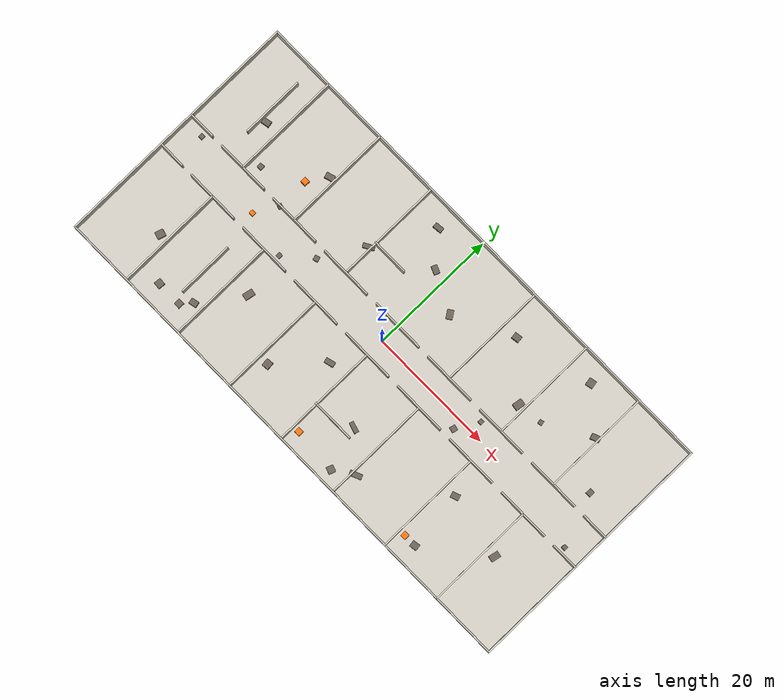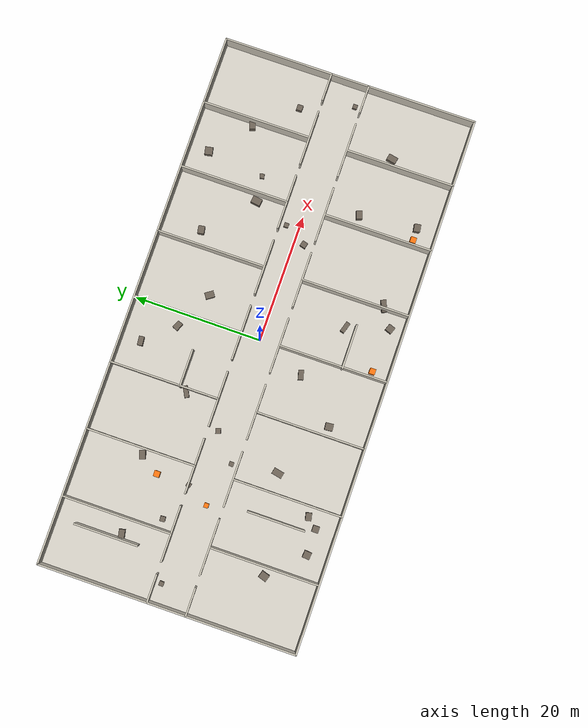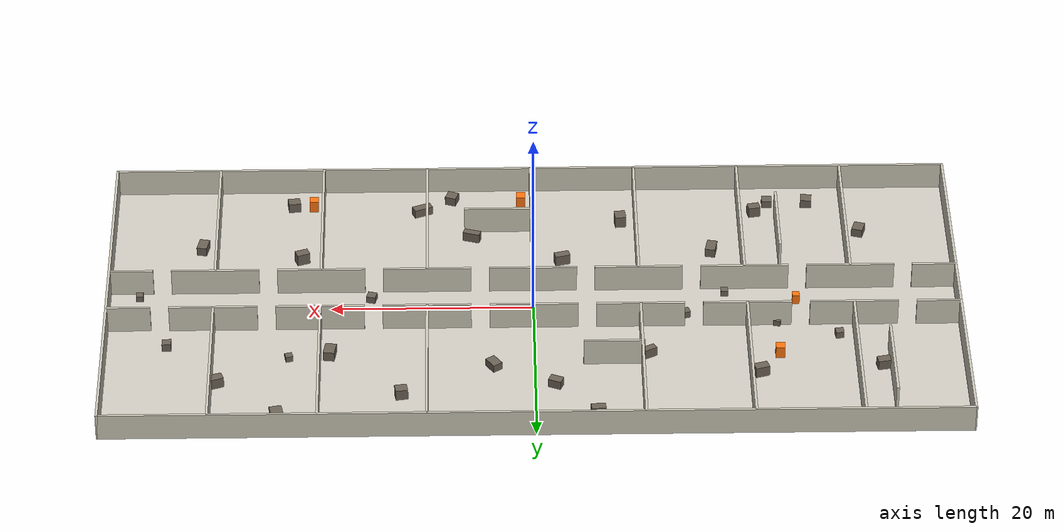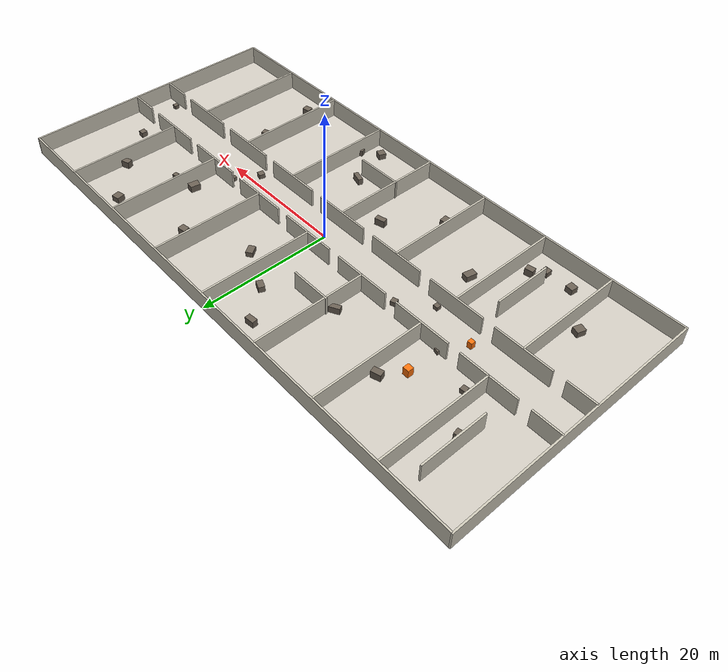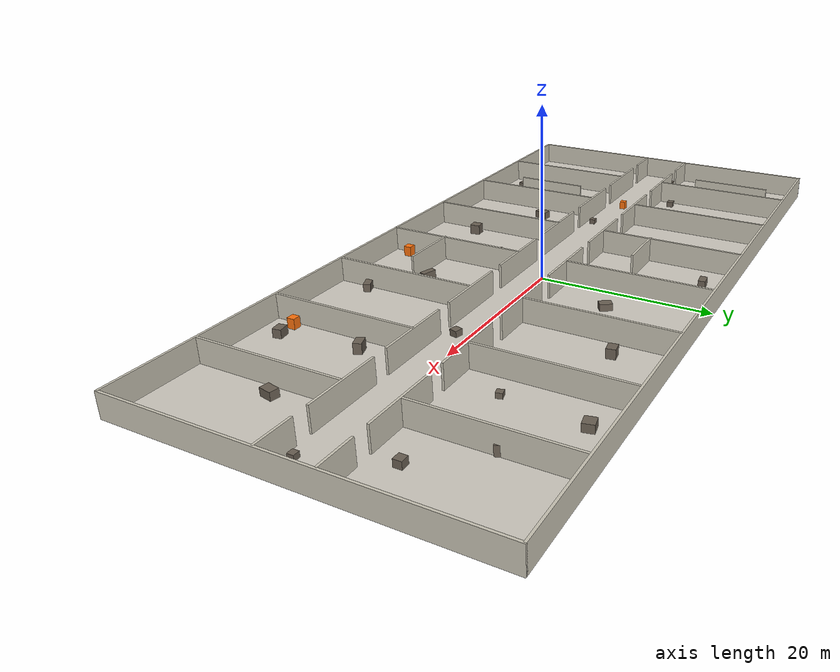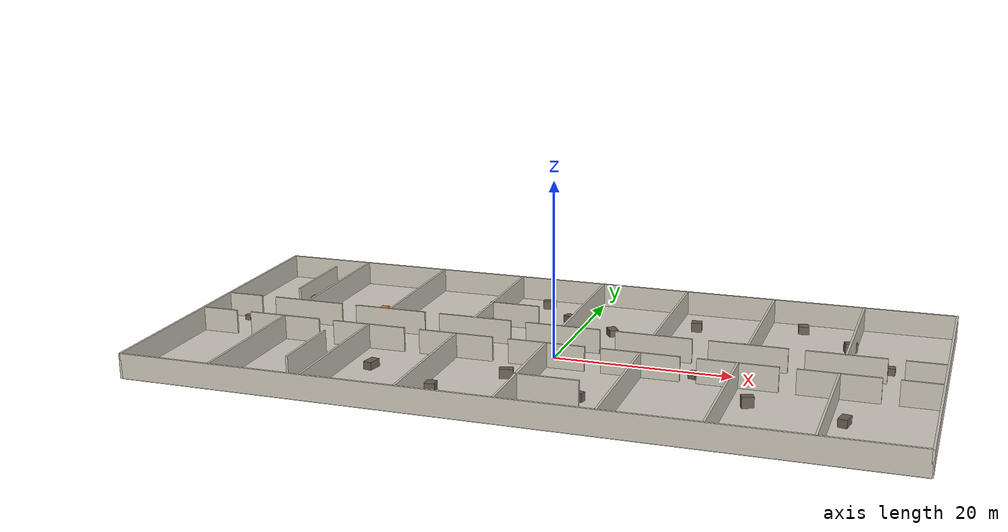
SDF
<sdf version="1.7">
 <world name="rescue_building_xl">
  <plugin filename="gz-sim-physics-system" name="gz::sim::systems::Physics"/>
  <plugin filename="gz-sim-user-commands-system" name="gz::sim::systems::UserCommands"/>
  <plugin filename="gz-sim-scene-broadcaster-system" name="gz::sim::systems::SceneBroadcaster"/>
  <plugin filename="gz-sim-sensors-system" name="gz::sim::systems::Sensors">
   <render_engine>ogre2</render_engine>
  </plugin>
  <light type="directional" name="sun">
   <pose>0 0 15 0 0 0</pose>
   <diffuse>0.6 0.6 0.6 1</diffuse>
   <specular>0.1 0.1 0.1 1</specular>
   <attenuation>
    <range>1000</range>
    <constant>0.9</constant>
    <linear>0.01</linear>
    <quadratic>0.001</quadratic>
   </attenuation>
   <direction>0.1 0.1 -1.0</direction>
  </light>
  <light type="point" name="hall_light_0">
   <pose>-24 0 2.6 0 0 0</pose>
   <diffuse>0.55 0.55 0.5 1</diffuse>
   <specular>0.1 0.1 0.1 1</specular>
   <attenuation>
    <range>14</range>
    <constant>0.5</constant>
    <linear>0.1</linear>
    <quadratic>0.01</quadratic>
   </attenuation>
   <cast_shadows>false</cast_shadows>
  </light>
  <light type="point" name="hall_light_8">
   <pose>-16 0 2.6 0 0 0</pose>
   <diffuse>0.55 0.55 0.5 1</diffuse>
   <specular>0.1 0.1 0.1 1</specular>
   <attenuation>
    <range>14</range>
    <constant>0.5</constant>
    <linear>0.1</linear>
    <quadratic>0.01</quadratic>
   </attenuation>
   <cast_shadows>false</cast_shadows>
  </light>
  <light type="point" name="hall_light_16">
   <pose>-8 0 2.6 0 0 0</pose>
   <diffuse>0.55 0.55 0.5 1</diffuse>
   <specular>0.1 0.1 0.1 1</specular>
   <attenuation>
    <range>14</range>
    <constant>0.5</constant>
    <linear>0.1</linear>
    <quadratic>0.01</quadratic>
   </attenuation>
   <cast_shadows>false</cast_shadows>
  </light>
  <light type="point" name="hall_light_24">
   <pose>0 0 2.6 0 0 0</pose>
   <diffuse>0.55 0.55 0.5 1</diffuse>
   <specular>0.1 0.1 0.1 1</specular>
   <attenuation>
    <range>14</range>
    <constant>0.5</constant>
    <linear>0.1</linear>
    <quadratic>0.01</quadratic>
   </attenuation>
   <cast_shadows>false</cast_shadows>
  </light>
  <light type="point" name="hall_light_32">
   <pose>8 0 2.6 0 0 0</pose>
   <diffuse>0.55 0.55 0.5 1</diffuse>
   <specular>0.1 0.1 0.1 1</specular>
   <attenuation>
    <range>14</range>
    <constant>0.5</constant>
    <linear>0.1</linear>
    <quadratic>0.01</quadratic>
   </attenuation>
   <cast_shadows>false</cast_shadows>
  </light>
  <light type="point" name="hall_light_40">
   <pose>16 0 2.6 0 0 0</pose>
   <diffuse>0.55 0.55 0.5 1</diffuse>
   <specular>0.1 0.1 0.1 1</specular>
   <attenuation>
    <range>14</range>
    <constant>0.5</constant>
    <linear>0.1</linear>
    <quadratic>0.01</quadratic>
   </attenuation>
   <cast_shadows>false</cast_shadows>
  </light>
  <light type="point" name="hall_light_48">
   <pose>24 0 2.6 0 0 0</pose>
   <diffuse>0.55 0.55 0.5 1</diffuse>
   <specular>0.1 0.1 0.1 1</specular>
   <attenuation>
    <range>14</range>
    <constant>0.5</constant>
    <linear>0.1</linear>
    <quadratic>0.01</quadratic>
   </attenuation>
   <cast_shadows>false</cast_shadows>
  </light>
  <model name="floor">
   <static>true</static>
   <pose>0 0 -0.05 0 0 0.0</pose>
   <link name="link">
    <collision name="col"><geometry><box><size>84.0 40.0 0.1</size></box></geometry></collision>
    <visual name="vis">
     <geometry><box><size>84.0 40.0 0.1</size></box></geometry>
     <material><ambient>0.82 0.8 0.76 1</ambient><diffuse>0.82 0.8 0.76 1</diffuse></material>
    </visual>
   </link>
  </model>
  <model name="outer_wall_north">
   <static>true</static>
   <pose>0 20.0 1.4 0 0 0.0</pose>
   <link name="link">
    <collision name="col"><geometry><box><size>84.0 0.25 2.8</size></box></geometry></collision>
    <visual name="vis">
     <geometry><box><size>84.0 0.25 2.8</size></box></geometry>
     <material><ambient>0.8 0.78 0.72 1</ambient><diffuse>0.8 0.78 0.72 1</diffuse></material>
    </visual>
   </link>
  </model>
  <model name="outer_wall_south">
   <static>true</static>
   <pose>0 -20.0 1.4 0 0 0.0</pose>
   <link name="link">
    <collision name="col"><geometry><box><size>84.0 0.25 2.8</size></box></geometry></collision>
    <visual name="vis">
     <geometry><box><size>84.0 0.25 2.8</size></box></geometry>
     <material><ambient>0.8 0.78 0.72 1</ambient><diffuse>0.8 0.78 0.72 1</diffuse></material>
    </visual>
   </link>
  </model>
  <model name="outer_wall_east">
   <static>true</static>
   <pose>42.0 0 1.4 0 0 0.0</pose>
   <link name="link">
    <collision name="col"><geometry><box><size>0.25 40.25 2.8</size></box></geometry></collision>
    <visual name="vis">
     <geometry><box><size>0.25 40.25 2.8</size></box></geometry>
     <material><ambient>0.8 0.78 0.72 1</ambient><diffuse>0.8 0.78 0.72 1</diffuse></material>
    </visual>
   </link>
  </model>
  <model name="outer_wall_west">
   <static>true</static>
   <pose>-42.0 0 1.4 0 0 0.0</pose>
   <link name="link">
    <collision name="col"><geometry><box><size>0.25 40.25 2.8</size></box></geometry></collision>
    <visual name="vis">
     <geometry><box><size>0.25 40.25 2.8</size></box></geometry>
     <material><ambient>0.8 0.78 0.72 1</ambient><diffuse>0.8 0.78 0.72 1</diffuse></material>
    </visual>
   </link>
  </model>
  <model name="corridor_wall_north_0">
   <static>true</static>
   <pose>-39.825 3.0 1.4 0 0 0.0</pose>
   <link name="link">
    <collision name="col"><geometry><box><size>4.350000000000001 0.25 2.8</size></box></geometry></collision>
    <visual name="vis">
     <geometry><box><size>4.350000000000001 0.25 2.8</size></box></geometry>
     <material><ambient>0.8 0.78 0.72 1</ambient><diffuse>0.8 0.78 0.72 1</diffuse></material>
    </visual>
   </link>
  </model>
  <model name="corridor_wall_north_2">
   <static>true</static>
   <pose>-31.5 3.0 1.4 0 0 0.0</pose>
   <link name="link">
    <collision name="col"><geometry><box><size>8.700000000000003 0.25 2.8</size></box></geometry></collision>
    <visual name="vis">
     <geometry><box><size>8.700000000000003 0.25 2.8</size></box></geometry>
     <material><ambient>0.8 0.78 0.72 1</ambient><diffuse>0.8 0.78 0.72 1</diffuse></material>
    </visual>
   </link>
  </model>
  <model name="corridor_wall_north_4">
   <static>true</static>
   <pose>-21.0 3.0 1.4 0 0 0.0</pose>
   <link name="link">
    <collision name="col"><geometry><box><size>8.700000000000003 0.25 2.8</size></box></geometry></collision>
    <visual name="vis">
     <geometry><box><size>8.700000000000003 0.25 2.8</size></box></geometry>
     <material><ambient>0.8 0.78 0.72 1</ambient><diffuse>0.8 0.78 0.72 1</diffuse></material>
    </visual>
   </link>
  </model>
  <model name="corridor_wall_north_6">
   <static>true</static>
   <pose>-10.5 3.0 1.4 0 0 0.0</pose>
   <link name="link">
    <collision name="col"><geometry><box><size>8.7 0.25 2.8</size></box></geometry></collision>
    <visual name="vis">
     <geometry><box><size>8.7 0.25 2.8</size></box></geometry>
     <material><ambient>0.8 0.78 0.72 1</ambient><diffuse>0.8 0.78 0.72 1</diffuse></material>
    </visual>
   </link>
  </model>
  <model name="corridor_wall_north_8">
   <static>true</static>
   <pose>0.0 3.0 1.4 0 0 0.0</pose>
   <link name="link">
    <collision name="col"><geometry><box><size>8.7 0.25 2.8</size></box></geometry></collision>
    <visual name="vis">
     <geometry><box><size>8.7 0.25 2.8</size></box></geometry>
     <material><ambient>0.8 0.78 0.72 1</ambient><diffuse>0.8 0.78 0.72 1</diffuse></material>
    </visual>
   </link>
  </model>
  <model name="corridor_wall_north_10">
   <static>true</static>
   <pose>10.5 3.0 1.4 0 0 0.0</pose>
   <link name="link">
    <collision name="col"><geometry><box><size>8.7 0.25 2.8</size></box></geometry></collision>
    <visual name="vis">
     <geometry><box><size>8.7 0.25 2.8</size></box></geometry>
     <material><ambient>0.8 0.78 0.72 1</ambient><diffuse>0.8 0.78 0.72 1</diffuse></material>
    </visual>
   </link>
  </model>
  <model name="corridor_wall_north_12">
   <static>true</static>
   <pose>21.0 3.0 1.4 0 0 0.0</pose>
   <link name="link">
    <collision name="col"><geometry><box><size>8.700000000000003 0.25 2.8</size></box></geometry></collision>
    <visual name="vis">
     <geometry><box><size>8.700000000000003 0.25 2.8</size></box></geometry>
     <material><ambient>0.8 0.78 0.72 1</ambient><diffuse>0.8 0.78 0.72 1</diffuse></material>
    </visual>
   </link>
  </model>
  <model name="corridor_wall_north_14">
   <static>true</static>
   <pose>31.5 3.0 1.4 0 0 0.0</pose>
   <link name="link">
    <collision name="col"><geometry><box><size>8.700000000000003 0.25 2.8</size></box></geometry></collision>
    <visual name="vis">
     <geometry><box><size>8.700000000000003 0.25 2.8</size></box></geometry>
     <material><ambient>0.8 0.78 0.72 1</ambient><diffuse>0.8 0.78 0.72 1</diffuse></material>
    </visual>
   </link>
  </model>
  <model name="corridor_wall_north_16">
   <static>true</static>
   <pose>39.825 3.0 1.4 0 0 0.0</pose>
   <link name="link">
    <collision name="col"><geometry><box><size>4.350000000000001 0.25 2.8</size></box></geometry></collision>
    <visual name="vis">
     <geometry><box><size>4.350000000000001 0.25 2.8</size></box></geometry>
     <material><ambient>0.8 0.78 0.72 1</ambient><diffuse>0.8 0.78 0.72 1</diffuse></material>
    </visual>
   </link>
  </model>
  <model name="corridor_wall_south_0">
   <static>true</static>
   <pose>-39.825 -3.0 1.4 0 0 0.0</pose>
   <link name="link">
    <collision name="col"><geometry><box><size>4.350000000000001 0.25 2.8</size></box></geometry></collision>
    <visual name="vis">
     <geometry><box><size>4.350000000000001 0.25 2.8</size></box></geometry>
     <material><ambient>0.8 0.78 0.72 1</ambient><diffuse>0.8 0.78 0.72 1</diffuse></material>
    </visual>
   </link>
  </model>
  <model name="corridor_wall_south_2">
   <static>true</static>
   <pose>-31.5 -3.0 1.4 0 0 0.0</pose>
   <link name="link">
    <collision name="col"><geometry><box><size>8.700000000000003 0.25 2.8</size></box></geometry></collision>
    <visual name="vis">
     <geometry><box><size>8.700000000000003 0.25 2.8</size></box></geometry>
     <material><ambient>0.8 0.78 0.72 1</ambient><diffuse>0.8 0.78 0.72 1</diffuse></material>
    </visual>
   </link>
  </model>
  <model name="corridor_wall_south_4">
   <static>true</static>
   <pose>-21.0 -3.0 1.4 0 0 0.0</pose>
   <link name="link">
    <collision name="col"><geometry><box><size>8.700000000000003 0.25 2.8</size></box></geometry></collision>
    <visual name="vis">
     <geometry><box><size>8.700000000000003 0.25 2.8</size></box></geometry>
     <material><ambient>0.8 0.78 0.72 1</ambient><diffuse>0.8 0.78 0.72 1</diffuse></material>
    </visual>
   </link>
  </model>
  <model name="corridor_wall_south_6">
   <static>true</static>
   <pose>-10.5 -3.0 1.4 0 0 0.0</pose>
   <link name="link">
    <collision name="col"><geometry><box><size>8.7 0.25 2.8</size></box></geometry></collision>
    <visual name="vis">
     <geometry><box><size>8.7 0.25 2.8</size></box></geometry>
     <material><ambient>0.8 0.78 0.72 1</ambient><diffuse>0.8 0.78 0.72 1</diffuse></material>
    </visual>
   </link>
  </model>
  <model name="corridor_wall_south_8">
   <static>true</static>
   <pose>0.0 -3.0 1.4 0 0 0.0</pose>
   <link name="link">
    <collision name="col"><geometry><box><size>8.7 0.25 2.8</size></box></geometry></collision>
    <visual name="vis">
     <geometry><box><size>8.7 0.25 2.8</size></box></geometry>
     <material><ambient>0.8 0.78 0.72 1</ambient><diffuse>0.8 0.78 0.72 1</diffuse></material>
    </visual>
   </link>
  </model>
  <model name="corridor_wall_south_10">
   <static>true</static>
   <pose>10.5 -3.0 1.4 0 0 0.0</pose>
   <link name="link">
    <collision name="col"><geometry><box><size>8.7 0.25 2.8</size></box></geometry></collision>
    <visual name="vis">
     <geometry><box><size>8.7 0.25 2.8</size></box></geometry>
     <material><ambient>0.8 0.78 0.72 1</ambient><diffuse>0.8 0.78 0.72 1</diffuse></material>
    </visual>
   </link>
  </model>
  <model name="corridor_wall_south_12">
   <static>true</static>
   <pose>21.0 -3.0 1.4 0 0 0.0</pose>
   <link name="link">
    <collision name="col"><geometry><box><size>8.700000000000003 0.25 2.8</size></box></geometry></collision>
    <visual name="vis">
     <geometry><box><size>8.700000000000003 0.25 2.8</size></box></geometry>
     <material><ambient>0.8 0.78 0.72 1</ambient><diffuse>0.8 0.78 0.72 1</diffuse></material>
    </visual>
   </link>
  </model>
  <model name="corridor_wall_south_14">
   <static>true</static>
   <pose>31.5 -3.0 1.4 0 0 0.0</pose>
   <link name="link">
    <collision name="col"><geometry><box><size>8.700000000000003 0.25 2.8</size></box></geometry></collision>
    <visual name="vis">
     <geometry><box><size>8.700000000000003 0.25 2.8</size></box></geometry>
     <material><ambient>0.8 0.78 0.72 1</ambient><diffuse>0.8 0.78 0.72 1</diffuse></material>
    </visual>
   </link>
  </model>
  <model name="corridor_wall_south_16">
   <static>true</static>
   <pose>39.825 -3.0 1.4 0 0 0.0</pose>
   <link name="link">
    <collision name="col"><geometry><box><size>4.350000000000001 0.25 2.8</size></box></geometry></collision>
    <visual name="vis">
     <geometry><box><size>4.350000000000001 0.25 2.8</size></box></geometry>
     <material><ambient>0.8 0.78 0.72 1</ambient><diffuse>0.8 0.78 0.72 1</diffuse></material>
    </visual>
   </link>
  </model>
  <model name="divider_north_1">
   <static>true</static>
   <pose>-31.5 11.5 1.4 0 0 0.0</pose>
   <link name="link">
    <collision name="col"><geometry><box><size>0.25 17.0 2.8</size></box></geometry></collision>
    <visual name="vis">
     <geometry><box><size>0.25 17.0 2.8</size></box></geometry>
     <material><ambient>0.8 0.78 0.72 1</ambient><diffuse>0.8 0.78 0.72 1</diffuse></material>
    </visual>
   </link>
  </model>
  <model name="divider_south_1">
   <static>true</static>
   <pose>-31.5 -11.5 1.4 0 0 0.0</pose>
   <link name="link">
    <collision name="col"><geometry><box><size>0.25 17.0 2.8</size></box></geometry></collision>
    <visual name="vis">
     <geometry><box><size>0.25 17.0 2.8</size></box></geometry>
     <material><ambient>0.8 0.78 0.72 1</ambient><diffuse>0.8 0.78 0.72 1</diffuse></material>
    </visual>
   </link>
  </model>
  <model name="divider_north_2">
   <static>true</static>
   <pose>-21.0 11.5 1.4 0 0 0.0</pose>
   <link name="link">
    <collision name="col"><geometry><box><size>0.25 17.0 2.8</size></box></geometry></collision>
    <visual name="vis">
     <geometry><box><size>0.25 17.0 2.8</size></box></geometry>
     <material><ambient>0.8 0.78 0.72 1</ambient><diffuse>0.8 0.78 0.72 1</diffuse></material>
    </visual>
   </link>
  </model>
  <model name="divider_south_2">
   <static>true</static>
   <pose>-21.0 -11.5 1.4 0 0 0.0</pose>
   <link name="link">
    <collision name="col"><geometry><box><size>0.25 17.0 2.8</size></box></geometry></collision>
    <visual name="vis">
     <geometry><box><size>0.25 17.0 2.8</size></box></geometry>
     <material><ambient>0.8 0.78 0.72 1</ambient><diffuse>0.8 0.78 0.72 1</diffuse></material>
    </visual>
   </link>
  </model>
  <model name="divider_north_3">
   <static>true</static>
   <pose>-10.5 11.5 1.4 0 0 0.0</pose>
   <link name="link">
    <collision name="col"><geometry><box><size>0.25 17.0 2.8</size></box></geometry></collision>
    <visual name="vis">
     <geometry><box><size>0.25 17.0 2.8</size></box></geometry>
     <material><ambient>0.8 0.78 0.72 1</ambient><diffuse>0.8 0.78 0.72 1</diffuse></material>
    </visual>
   </link>
  </model>
  <model name="divider_south_3">
   <static>true</static>
   <pose>-10.5 -11.5 1.4 0 0 0.0</pose>
   <link name="link">
    <collision name="col"><geometry><box><size>0.25 17.0 2.8</size></box></geometry></collision>
    <visual name="vis">
     <geometry><box><size>0.25 17.0 2.8</size></box></geometry>
     <material><ambient>0.8 0.78 0.72 1</ambient><diffuse>0.8 0.78 0.72 1</diffuse></material>
    </visual>
   </link>
  </model>
  <model name="divider_north_4">
   <static>true</static>
   <pose>0.0 11.5 1.4 0 0 0.0</pose>
   <link name="link">
    <collision name="col"><geometry><box><size>0.25 17.0 2.8</size></box></geometry></collision>
    <visual name="vis">
     <geometry><box><size>0.25 17.0 2.8</size></box></geometry>
     <material><ambient>0.8 0.78 0.72 1</ambient><diffuse>0.8 0.78 0.72 1</diffuse></material>
    </visual>
   </link>
  </model>
  <model name="divider_south_4">
   <static>true</static>
   <pose>0.0 -11.5 1.4 0 0 0.0</pose>
   <link name="link">
    <collision name="col"><geometry><box><size>0.25 17.0 2.8</size></box></geometry></collision>
    <visual name="vis">
     <geometry><box><size>0.25 17.0 2.8</size></box></geometry>
     <material><ambient>0.8 0.78 0.72 1</ambient><diffuse>0.8 0.78 0.72 1</diffuse></material>
    </visual>
   </link>
  </model>
  <model name="divider_north_5">
   <static>true</static>
   <pose>10.5 11.5 1.4 0 0 0.0</pose>
   <link name="link">
    <collision name="col"><geometry><box><size>0.25 17.0 2.8</size></box></geometry></collision>
    <visual name="vis">
     <geometry><box><size>0.25 17.0 2.8</size></box></geometry>
     <material><ambient>0.8 0.78 0.72 1</ambient><diffuse>0.8 0.78 0.72 1</diffuse></material>
    </visual>
   </link>
  </model>
  <model name="divider_south_5">
   <static>true</static>
   <pose>10.5 -11.5 1.4 0 0 0.0</pose>
   <link name="link">
    <collision name="col"><geometry><box><size>0.25 17.0 2.8</size></box></geometry></collision>
    <visual name="vis">
     <geometry><box><size>0.25 17.0 2.8</size></box></geometry>
     <material><ambient>0.8 0.78 0.72 1</ambient><diffuse>0.8 0.78 0.72 1</diffuse></material>
    </visual>
   </link>
  </model>
  <model name="divider_north_6">
   <static>true</static>
   <pose>21.0 11.5 1.4 0 0 0.0</pose>
   <link name="link">
    <collision name="col"><geometry><box><size>0.25 17.0 2.8</size></box></geometry></collision>
    <visual name="vis">
     <geometry><box><size>0.25 17.0 2.8</size></box></geometry>
     <material><ambient>0.8 0.78 0.72 1</ambient><diffuse>0.8 0.78 0.72 1</diffuse></material>
    </visual>
   </link>
  </model>
  <model name="divider_south_6">
   <static>true</static>
   <pose>21.0 -11.5 1.4 0 0 0.0</pose>
   <link name="link">
    <collision name="col"><geometry><box><size>0.25 17.0 2.8</size></box></geometry></collision>
    <visual name="vis">
     <geometry><box><size>0.25 17.0 2.8</size></box></geometry>
     <material><ambient>0.8 0.78 0.72 1</ambient><diffuse>0.8 0.78 0.72 1</diffuse></material>
    </visual>
   </link>
  </model>
  <model name="divider_north_7">
   <static>true</static>
   <pose>31.5 11.5 1.4 0 0 0.0</pose>
   <link name="link">
    <collision name="col"><geometry><box><size>0.25 17.0 2.8</size></box></geometry></collision>
    <visual name="vis">
     <geometry><box><size>0.25 17.0 2.8</size></box></geometry>
     <material><ambient>0.8 0.78 0.72 1</ambient><diffuse>0.8 0.78 0.72 1</diffuse></material>
    </visual>
   </link>
  </model>
  <model name="divider_south_7">
   <static>true</static>
   <pose>31.5 -11.5 1.4 0 0 0.0</pose>
   <link name="link">
    <collision name="col"><geometry><box><size>0.25 17.0 2.8</size></box></geometry></collision>
    <visual name="vis">
     <geometry><box><size>0.25 17.0 2.8</size></box></geometry>
     <material><ambient>0.8 0.78 0.72 1</ambient><diffuse>0.8 0.78 0.72 1</diffuse></material>
    </visual>
   </link>
  </model>
  <model name="inner_n1">
   <static>true</static>
   <pose>-34.75 12.0 1.4 0 0 0.0</pose>
   <link name="link">
    <collision name="col"><geometry><box><size>0.25 10.0 2.8</size></box></geometry></collision>
    <visual name="vis">
     <geometry><box><size>0.25 10.0 2.8</size></box></geometry>
     <material><ambient>0.8 0.78 0.72 1</ambient><diffuse>0.8 0.78 0.72 1</diffuse></material>
    </visual>
   </link>
  </model>
  <model name="inner_n4">
   <static>true</static>
   <pose>-7.75 9.0 1.4 0 0 0.0</pose>
   <link name="link">
    <collision name="col"><geometry><box><size>6.0 0.25 2.8</size></box></geometry></collision>
    <visual name="vis">
     <geometry><box><size>6.0 0.25 2.8</size></box></geometry>
     <material><ambient>0.8 0.78 0.72 1</ambient><diffuse>0.8 0.78 0.72 1</diffuse></material>
    </visual>
   </link>
  </model>
  <model name="inner_s2">
   <static>true</static>
   <pose>-24.75 -11.0 1.4 0 0 0.0</pose>
   <link name="link">
    <collision name="col"><geometry><box><size>0.25 9.0 2.8</size></box></geometry></collision>
    <visual name="vis">
     <geometry><box><size>0.25 9.0 2.8</size></box></geometry>
     <material><ambient>0.8 0.78 0.72 1</ambient><diffuse>0.8 0.78 0.72 1</diffuse></material>
    </visual>
   </link>
  </model>
  <model name="inner_s5">
   <static>true</static>
   <pose>3.25 -13.0 1.4 0 0 0.0</pose>
   <link name="link">
    <collision name="col"><geometry><box><size>7.0 0.25 2.8</size></box></geometry></collision>
    <visual name="vis">
     <geometry><box><size>7.0 0.25 2.8</size></box></geometry>
     <material><ambient>0.8 0.78 0.72 1</ambient><diffuse>0.8 0.78 0.72 1</diffuse></material>
    </visual>
   </link>
  </model>
  <model name="debris_1">
   <static>true</static>
   <pose>-22 11 0.55 0 0 0.3</pose>
   <link name="link">
    <collision name="col"><geometry><box><size>1.4 0.9 1.1</size></box></geometry></collision>
    <visual name="vis">
     <geometry><box><size>1.4 0.9 1.1</size></box></geometry>
     <material><ambient>0.42 0.38 0.33 1</ambient><diffuse>0.42 0.38 0.33 1</diffuse></material>
    </visual>
   </link>
  </model>
  <model name="debris_2">
   <static>true</static>
   <pose>-18 -9 0.45 0 0 -0.2</pose>
   <link name="link">
    <collision name="col"><geometry><box><size>1.0 1.6 0.9</size></box></geometry></collision>
    <visual name="vis">
     <geometry><box><size>1.0 1.6 0.9</size></box></geometry>
     <material><ambient>0.42 0.38 0.33 1</ambient><diffuse>0.42 0.38 0.33 1</diffuse></material>
    </visual>
   </link>
  </model>
  <model name="debris_3">
   <static>true</static>
   <pose>-11 8 0.5 0 0 0.5</pose>
   <link name="link">
    <collision name="col"><geometry><box><size>1.8 0.7 1.0</size></box></geometry></collision>
    <visual name="vis">
     <geometry><box><size>1.8 0.7 1.0</size></box></geometry>
     <material><ambient>0.42 0.38 0.33 1</ambient><diffuse>0.42 0.38 0.33 1</diffuse></material>
    </visual>
   </link>
  </model>
  <model name="debris_4">
   <static>true</static>
   <pose>-9 -14 0.6 0 0 0.1</pose>
   <link name="link">
    <collision name="col"><geometry><box><size>1.1 1.2 1.2</size></box></geometry></collision>
    <visual name="vis">
     <geometry><box><size>1.1 1.2 1.2</size></box></geometry>
     <material><ambient>0.42 0.38 0.33 1</ambient><diffuse>0.42 0.38 0.33 1</diffuse></material>
    </visual>
   </link>
  </model>
  <model name="debris_5">
   <static>true</static>
   <pose>-2 12.5 0.45 0 0 -0.4</pose>
   <link name="link">
    <collision name="col"><geometry><box><size>1.3 0.9 0.9</size></box></geometry></collision>
    <visual name="vis">
     <geometry><box><size>1.3 0.9 0.9</size></box></geometry>
     <material><ambient>0.42 0.38 0.33 1</ambient><diffuse>0.42 0.38 0.33 1</diffuse></material>
    </visual>
   </link>
  </model>
  <model name="debris_6">
   <static>true</static>
   <pose>-3 -7.5 0.55 0 0 0.25</pose>
   <link name="link">
    <collision name="col"><geometry><box><size>1.5 0.8 1.1</size></box></geometry></collision>
    <visual name="vis">
     <geometry><box><size>1.5 0.8 1.1</size></box></geometry>
     <material><ambient>0.42 0.38 0.33 1</ambient><diffuse>0.42 0.38 0.33 1</diffuse></material>
    </visual>
   </link>
  </model>
  <model name="debris_7">
   <static>true</static>
   <pose>4 9.5 0.4 0 0 0.6</pose>
   <link name="link">
    <collision name="col"><geometry><box><size>1.0 1.4 0.8</size></box></geometry></collision>
    <visual name="vis">
     <geometry><box><size>1.0 1.4 0.8</size></box></geometry>
     <material><ambient>0.42 0.38 0.33 1</ambient><diffuse>0.42 0.38 0.33 1</diffuse></material>
    </visual>
   </link>
  </model>
  <model name="debris_8">
   <static>true</static>
   <pose>6 -11.5 0.5 0 0 -0.3</pose>
   <link name="link">
    <collision name="col"><geometry><box><size>1.7 0.7 1.0</size></box></geometry></collision>
    <visual name="vis">
     <geometry><box><size>1.7 0.7 1.0</size></box></geometry>
     <material><ambient>0.42 0.38 0.33 1</ambient><diffuse>0.42 0.38 0.33 1</diffuse></material>
    </visual>
   </link>
  </model>
  <model name="debris_9">
   <static>true</static>
   <pose>13 14 0.55 0 0 0.15</pose>
   <link name="link">
    <collision name="col"><geometry><box><size>1.2 1.0 1.1</size></box></geometry></collision>
    <visual name="vis">
     <geometry><box><size>1.2 1.0 1.1</size></box></geometry>
     <material><ambient>0.42 0.38 0.33 1</ambient><diffuse>0.42 0.38 0.33 1</diffuse></material>
    </visual>
   </link>
  </model>
  <model name="debris_10">
   <static>true</static>
   <pose>11 -16 0.45 0 0 0.4</pose>
   <link name="link">
    <collision name="col"><geometry><box><size>1.9 0.8 0.9</size></box></geometry></collision>
    <visual name="vis">
     <geometry><box><size>1.9 0.8 0.9</size></box></geometry>
     <material><ambient>0.42 0.38 0.33 1</ambient><diffuse>0.42 0.38 0.33 1</diffuse></material>
    </visual>
   </link>
  </model>
  <model name="debris_11">
   <static>true</static>
   <pose>20 7.5 0.5 0 0 -0.15</pose>
   <link name="link">
    <collision name="col"><geometry><box><size>1.1 1.5 1.0</size></box></geometry></collision>
    <visual name="vis">
     <geometry><box><size>1.1 1.5 1.0</size></box></geometry>
     <material><ambient>0.42 0.38 0.33 1</ambient><diffuse>0.42 0.38 0.33 1</diffuse></material>
    </visual>
   </link>
  </model>
  <model name="debris_12">
   <static>true</static>
   <pose>23 -8 0.6 0 0 0.35</pose>
   <link name="link">
    <collision name="col"><geometry><box><size>1.3 0.9 1.2</size></box></geometry></collision>
    <visual name="vis">
     <geometry><box><size>1.3 0.9 1.2</size></box></geometry>
     <material><ambient>0.42 0.38 0.33 1</ambient><diffuse>0.42 0.38 0.33 1</diffuse></material>
    </visual>
   </link>
  </model>
  <model name="debris_13">
   <static>true</static>
   <pose>-24 -17 0.4 0 0 0.0</pose>
   <link name="link">
    <collision name="col"><geometry><box><size>1.0 1.0 0.8</size></box></geometry></collision>
    <visual name="vis">
     <geometry><box><size>1.0 1.0 0.8</size></box></geometry>
     <material><ambient>0.42 0.38 0.33 1</ambient><diffuse>0.42 0.38 0.33 1</diffuse></material>
    </visual>
   </link>
  </model>
  <model name="debris_14">
   <static>true</static>
   <pose>25 17 0.45 0 0 0.2</pose>
   <link name="link">
    <collision name="col"><geometry><box><size>1.2 1.2 0.9</size></box></geometry></collision>
    <visual name="vis">
     <geometry><box><size>1.2 1.2 0.9</size></box></geometry>
     <material><ambient>0.42 0.38 0.33 1</ambient><diffuse>0.42 0.38 0.33 1</diffuse></material>
    </visual>
   </link>
  </model>
  <model name="debris_15">
   <static>true</static>
   <pose>-15 1.5 0.35 0 0 0.3</pose>
   <link name="link">
    <collision name="col"><geometry><box><size>0.8 0.8 0.7</size></box></geometry></collision>
    <visual name="vis">
     <geometry><box><size>0.8 0.8 0.7</size></box></geometry>
     <material><ambient>0.42 0.38 0.33 1</ambient><diffuse>0.42 0.38 0.33 1</diffuse></material>
    </visual>
   </link>
  </model>
  <model name="debris_16">
   <static>true</static>
   <pose>16 -1.5 0.35 0 0 -0.25</pose>
   <link name="link">
    <collision name="col"><geometry><box><size>0.9 0.9 0.7</size></box></geometry></collision>
    <visual name="vis">
     <geometry><box><size>0.9 0.9 0.7</size></box></geometry>
     <material><ambient>0.42 0.38 0.33 1</ambient><diffuse>0.42 0.38 0.33 1</diffuse></material>
    </visual>
   </link>
  </model>
  <model name="debris_17">
   <static>true</static>
   <pose>-6 17 0.5 0 0 0.1</pose>
   <link name="link">
    <collision name="col"><geometry><box><size>1.4 0.8 1.0</size></box></geometry></collision>
    <visual name="vis">
     <geometry><box><size>1.4 0.8 1.0</size></box></geometry>
     <material><ambient>0.42 0.38 0.33 1</ambient><diffuse>0.42 0.38 0.33 1</diffuse></material>
    </visual>
   </link>
  </model>
  <model name="debris_18">
   <static>true</static>
   <pose>8 -18 0.45 0 0 -0.35</pose>
   <link name="link">
    <collision name="col"><geometry><box><size>1.1 1.1 0.9</size></box></geometry></collision>
    <visual name="vis">
     <geometry><box><size>1.1 1.1 0.9</size></box></geometry>
     <material><ambient>0.42 0.38 0.33 1</ambient><diffuse>0.42 0.38 0.33 1</diffuse></material>
    </visual>
   </link>
  </model>
  <model name="debris_19">
   <static>true</static>
   <pose>18 2.0 0.3 0 0 0.0</pose>
   <link name="link">
    <collision name="col"><geometry><box><size>0.7 0.7 0.6</size></box></geometry></collision>
    <visual name="vis">
     <geometry><box><size>0.7 0.7 0.6</size></box></geometry>
     <material><ambient>0.42 0.38 0.33 1</ambient><diffuse>0.42 0.38 0.33 1</diffuse></material>
    </visual>
   </link>
  </model>
  <model name="debris_20">
   <static>true</static>
   <pose>-19 -2.0 0.3 0 0 0.0</pose>
   <link name="link">
    <collision name="col"><geometry><box><size>0.7 0.7 0.6</size></box></geometry></collision>
    <visual name="vis">
     <geometry><box><size>0.7 0.7 0.6</size></box></geometry>
     <material><ambient>0.42 0.38 0.33 1</ambient><diffuse>0.42 0.38 0.33 1</diffuse></material>
    </visual>
   </link>
  </model>
  <model name="debris_21">
   <static>true</static>
   <pose>-34 10 0.5 0 0 0.2</pose>
   <link name="link">
    <collision name="col"><geometry><box><size>1.3 0.9 1.0</size></box></geometry></collision>
    <visual name="vis">
     <geometry><box><size>1.3 0.9 1.0</size></box></geometry>
     <material><ambient>0.42 0.38 0.33 1</ambient><diffuse>0.42 0.38 0.33 1</diffuse></material>
    </visual>
   </link>
  </model>
  <model name="debris_22">
   <static>true</static>
   <pose>-33 -12 0.45 0 0 -0.3</pose>
   <link name="link">
    <collision name="col"><geometry><box><size>1.1 1.3 0.9</size></box></geometry></collision>
    <visual name="vis">
     <geometry><box><size>1.1 1.3 0.9</size></box></geometry>
     <material><ambient>0.42 0.38 0.33 1</ambient><diffuse>0.42 0.38 0.33 1</diffuse></material>
    </visual>
   </link>
  </model>
  <model name="debris_23">
   <static>true</static>
   <pose>-30 5 0.35 0 0 0.1</pose>
   <link name="link">
    <collision name="col"><geometry><box><size>0.8 0.8 0.7</size></box></geometry></collision>
    <visual name="vis">
     <geometry><box><size>0.8 0.8 0.7</size></box></geometry>
     <material><ambient>0.42 0.38 0.33 1</ambient><diffuse>0.42 0.38 0.33 1</diffuse></material>
    </visual>
   </link>
  </model>
  <model name="debris_24">
   <static>true</static>
   <pose>31 12 0.55 0 0 0.35</pose>
   <link name="link">
    <collision name="col"><geometry><box><size>1.4 0.9 1.1</size></box></geometry></collision>
    <visual name="vis">
     <geometry><box><size>1.4 0.9 1.1</size></box></geometry>
     <material><ambient>0.42 0.38 0.33 1</ambient><diffuse>0.42 0.38 0.33 1</diffuse></material>
    </visual>
   </link>
  </model>
  <model name="debris_25">
   <static>true</static>
   <pose>33 -10 0.45 0 0 -0.2</pose>
   <link name="link">
    <collision name="col"><geometry><box><size>1.0 1.5 0.9</size></box></geometry></collision>
    <visual name="vis">
     <geometry><box><size>1.0 1.5 0.9</size></box></geometry>
     <material><ambient>0.42 0.38 0.33 1</ambient><diffuse>0.42 0.38 0.33 1</diffuse></material>
    </visual>
   </link>
  </model>
  <model name="debris_26">
   <static>true</static>
   <pose>36 6 0.4 0 0 0.0</pose>
   <link name="link">
    <collision name="col"><geometry><box><size>0.9 0.9 0.8</size></box></geometry></collision>
    <visual name="vis">
     <geometry><box><size>0.9 0.9 0.8</size></box></geometry>
     <material><ambient>0.42 0.38 0.33 1</ambient><diffuse>0.42 0.38 0.33 1</diffuse></material>
    </visual>
   </link>
  </model>
  <model name="debris_27">
   <static>true</static>
   <pose>24 -17 0.5 0 0 0.15</pose>
   <link name="link">
    <collision name="col"><geometry><box><size>1.2 1.0 1.0</size></box></geometry></collision>
    <visual name="vis">
     <geometry><box><size>1.2 1.0 1.0</size></box></geometry>
     <material><ambient>0.42 0.38 0.33 1</ambient><diffuse>0.42 0.38 0.33 1</diffuse></material>
    </visual>
   </link>
  </model>
  <model name="debris_28">
   <static>true</static>
   <pose>-28 -17 0.45 0 0 -0.1</pose>
   <link name="link">
    <collision name="col"><geometry><box><size>1.1 1.1 0.9</size></box></geometry></collision>
    <visual name="vis">
     <geometry><box><size>1.1 1.1 0.9</size></box></geometry>
     <material><ambient>0.42 0.38 0.33 1</ambient><diffuse>0.42 0.38 0.33 1</diffuse></material>
    </visual>
   </link>
  </model>
  <model name="debris_29">
   <static>true</static>
   <pose>24 8 0.3 0 0 0.25</pose>
   <link name="link">
    <collision name="col"><geometry><box><size>0.7 0.7 0.6</size></box></geometry></collision>
    <visual name="vis">
     <geometry><box><size>0.7 0.7 0.6</size></box></geometry>
     <material><ambient>0.42 0.38 0.33 1</ambient><diffuse>0.42 0.38 0.33 1</diffuse></material>
    </visual>
   </link>
  </model>
  <model name="debris_30">
   <static>true</static>
   <pose>-24 3 0.3 0 0 -0.25</pose>
   <link name="link">
    <collision name="col"><geometry><box><size>0.7 0.7 0.6</size></box></geometry></collision>
    <visual name="vis">
     <geometry><box><size>0.7 0.7 0.6</size></box></geometry>
     <material><ambient>0.42 0.38 0.33 1</ambient><diffuse>0.42 0.38 0.33 1</diffuse></material>
    </visual>
   </link>
  </model>
  <model name="debris_31">
   <static>true</static>
   <pose>39 -2.0 0.3 0 0 0.0</pose>
   <link name="link">
    <collision name="col"><geometry><box><size>0.7 0.7 0.6</size></box></geometry></collision>
    <visual name="vis">
     <geometry><box><size>0.7 0.7 0.6</size></box></geometry>
     <material><ambient>0.42 0.38 0.33 1</ambient><diffuse>0.42 0.38 0.33 1</diffuse></material>
    </visual>
   </link>
  </model>
  <model name="debris_32">
   <static>true</static>
   <pose>-39 2.0 0.3 0 0 0.0</pose>
   <link name="link">
    <collision name="col"><geometry><box><size>0.7 0.7 0.6</size></box></geometry></collision>
    <visual name="vis">
     <geometry><box><size>0.7 0.7 0.6</size></box></geometry>
     <material><ambient>0.42 0.38 0.33 1</ambient><diffuse>0.42 0.38 0.33 1</diffuse></material>
    </visual>
   </link>
  </model>
  <model name="debris_occluder">
   <static>true</static>
   <pose>-22.6 -15.4 0.55 0 0 0.2</pose>
   <link name="link">
    <collision name="col"><geometry><box><size>1.2 0.9 1.1</size></box></geometry></collision>
    <visual name="vis">
     <geometry><box><size>1.2 0.9 1.1</size></box></geometry>
     <material><ambient>0.42 0.38 0.33 1</ambient><diffuse>0.42 0.38 0.33 1</diffuse></material>
    </visual>
   </link>
  </model>
  <model name="fire_source_1">
   <static>true</static>
   <pose>-24.0 8.0 0.6 0 0 0</pose>
   <link name="link">
    <visual name="vis">
     <geometry><box><size>0.9 0.9 1.2</size></box></geometry>
     <material>
      <ambient>1.0 0.45 0.05 1</ambient>
      <diffuse>1.0 0.45 0.05 1</diffuse>
      <emissive>1.0 0.5 0.1 1</emissive>
     </material>
     <plugin filename="gz-sim-thermal-system" name="gz::sim::systems::Thermal">
      <temperature>600.0</temperature>
     </plugin>
    </visual>
   </link>
  </model>
  <light type="point" name="fire_source_1_light">
   <pose>-24.0 8.0 1.4 0 0 0</pose>
   <diffuse>1.0 0.55 0.2 1</diffuse>
   <specular>0.3 0.15 0.05 1</specular>
   <attenuation>
    <range>7</range>
    <constant>0.4</constant>
    <linear>0.15</linear>
    <quadratic>0.02</quadratic>
   </attenuation>
   <cast_shadows>false</cast_shadows>
  </light>
  <model name="fire_source_2">
   <static>true</static>
   <pose>22.0 -17.0 0.6 0 0 0</pose>
   <link name="link">
    <visual name="vis">
     <geometry><box><size>0.9 0.9 1.2</size></box></geometry>
     <material>
      <ambient>1.0 0.45 0.05 1</ambient>
      <diffuse>1.0 0.45 0.05 1</diffuse>
      <emissive>1.0 0.5 0.1 1</emissive>
     </material>
     <plugin filename="gz-sim-thermal-system" name="gz::sim::systems::Thermal">
      <temperature>600.0</temperature>
     </plugin>
    </visual>
   </link>
  </model>
  <light type="point" name="fire_source_2_light">
   <pose>22.0 -17.0 1.4 0 0 0</pose>
   <diffuse>1.0 0.55 0.2 1</diffuse>
   <specular>0.3 0.15 0.05 1</specular>
   <attenuation>
    <range>7</range>
    <constant>0.4</constant>
    <linear>0.15</linear>
    <quadratic>0.02</quadratic>
   </attenuation>
   <cast_shadows>false</cast_shadows>
  </light>
  <model name="fire_source_3">
   <static>true</static>
   <pose>1.0 -17.5 0.6 0 0 0</pose>
   <link name="link">
    <visual name="vis">
     <geometry><box><size>0.9 0.9 1.2</size></box></geometry>
     <material>
      <ambient>1.0 0.45 0.05 1</ambient>
      <diffuse>1.0 0.45 0.05 1</diffuse>
      <emissive>1.0 0.5 0.1 1</emissive>
     </material>
     <plugin filename="gz-sim-thermal-system" name="gz::sim::systems::Thermal">
      <temperature>600.0</temperature>
     </plugin>
    </visual>
   </link>
  </model>
  <light type="point" name="fire_source_3_light">
   <pose>1.0 -17.5 1.4 0 0 0</pose>
   <diffuse>1.0 0.55 0.2 1</diffuse>
   <specular>0.3 0.15 0.05 1</specular>
   <attenuation>
    <range>7</range>
    <constant>0.4</constant>
    <linear>0.15</linear>
    <quadratic>0.02</quadratic>
   </attenuation>
   <cast_shadows>false</cast_shadows>
  </light>
  <model name="fire_source_4">
   <static>true</static>
   <pose>-26.0 -0.5 0.6 0 0 0</pose>
   <link name="link">
    <visual name="vis">
     <geometry><box><size>0.7 0.7 1.0</size></box></geometry>
     <material>
      <ambient>1.0 0.45 0.05 1</ambient>
      <diffuse>1.0 0.45 0.05 1</diffuse>
      <emissive>1.0 0.5 0.1 1</emissive>
     </material>
     <plugin filename="gz-sim-thermal-system" name="gz::sim::systems::Thermal">
      <temperature>600.0</temperature>
     </plugin>
    </visual>
   </link>
  </model>
  <light type="point" name="fire_source_4_light">
   <pose>-26.0 -0.5 1.4 0 0 0</pose>
   <diffuse>1.0 0.55 0.2 1</diffuse>
   <specular>0.3 0.15 0.05 1</specular>
   <attenuation>
    <range>7</range>
    <constant>0.4</constant>
    <linear>0.15</linear>
    <quadratic>0.02</quadratic>
   </attenuation>
   <cast_shadows>false</cast_shadows>
  </light>
 </world>
</sdf>
